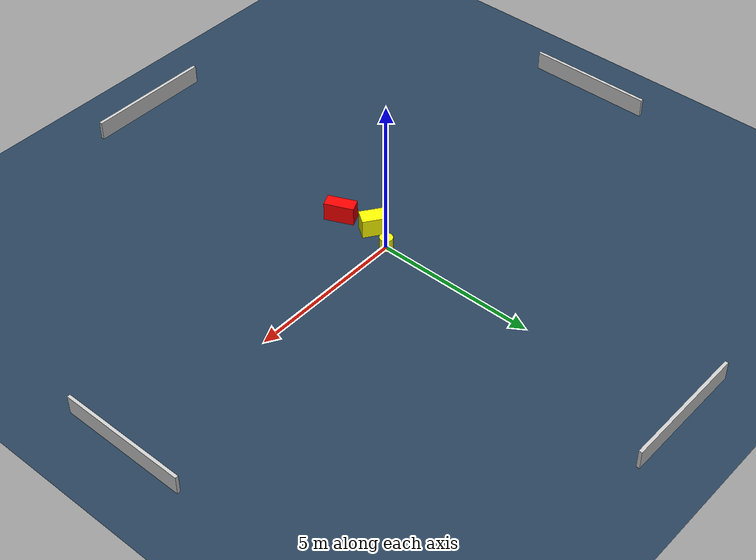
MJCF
<?xml version="1.0" ?>
<mujoco model="generated_environment">
  <option timestep="0.01" integrator="RK4" cone="elliptic"/>
  <default>
    <geom density="1"/>
  </default>
  <asset>
    <texture builtin="gradient" height="3072" name="skybox" rgb1="0.3 0.5 0.7" rgb2="0 0 0" type="skybox" width="512"/>
    <texture builtin="checker" height="300" name="groundplane" rgb1="0.2 0.3 0.4" rgb2="0.1 0.2 0.3" type="2d" width="300"/>
    <material name="groundplane" reflectance="0.2" texrepeat="5 5" texture="groundplane"/>
  </asset>
  <worldbody>
    <light dir="0 0 -1" directional="true" pos="0 0 1.5"/>
    <geom condim="3" friction="0.5 0.005 0.001" material="groundplane" name="floor" pos="0 0 0" size="0 0 0.05" type="plane"/>
    <body name="walls">
      <geom name="wall_1" condim="4" pos="-10.0 0.0 0.3" rgba="0.800000011920929 0.800000011920929 0.800000011920929 1.0" size="0.05 2.0 0.3" type="box"/>
      <geom name="wall_2" condim="4" pos="10.0 0.0 0.3" rgba="0.800000011920929 0.800000011920929 0.800000011920929 1.0" size="0.05 2.0 0.3" type="box"/>
      <geom name="wall_3" condim="4" pos="0.0 -10.0 0.3" rgba="0.800000011920929 0.800000011920929 0.800000011920929 1.0" size="2.0 0.05 0.3" type="box"/>
      <geom name="wall_4" condim="4" pos="0.0 10.0 0.3" rgba="0.800000011920929 0.800000011920929 0.800000011920929 1.0" size="2.0 0.05 0.3" type="box"/>
    </body>
    <body name="robot">
      <joint name="joint_x" type="slide" pos="0 0 0" axis="1 0 0"/>
      <joint name="joint_y" type="slide" pos="0 0 0" axis="0 1 0"/>
      <geom name="robot" type="cylinder" pos="0.0 0.0 0.2" size="0.2 0.2 0.0" mass="5.0" friction="1.0 0.005 0.0001" condim="4" rgba="1.0 1.0 0.0 1.0"/>
    </body>
    <body name="obstacle_1_movable">
      <geom name="obstacle_1_movable" condim="4" pos="-0.3106175622095673 -0.7751904806246965 0.3" euler="0 0 325.0052064731357" friction="0.0 0.005 0.001" rgba="1.0 1.0 0.0 1.0" size="0.3803577947314285 0.2463890792436401 0.3" type="box" mass="0.1"/>
      <joint type="free"/>
    </body>
    <body name="obstacle_2_static">
      <geom name="obstacle_2_static" condim="4" pos="-0.10306829097252665 -1.8532106198973957 0.3" euler="0 0 113.88721122153456" friction="0.0 0.005 0.001" rgba="1.0 0.0 0.0 1.0" size="0.4558164208162647 0.2047465327853124 0.3" type="box"/>
    </body>
  </worldbody>
  <actuator>
    <motor name="actuator_x" joint="joint_x" gear="1" ctrlrange="-1 1"/>
    <motor name="actuator_y" joint="joint_y" gear="1" ctrlrange="-1 1"/>
  </actuator>
</mujoco>
